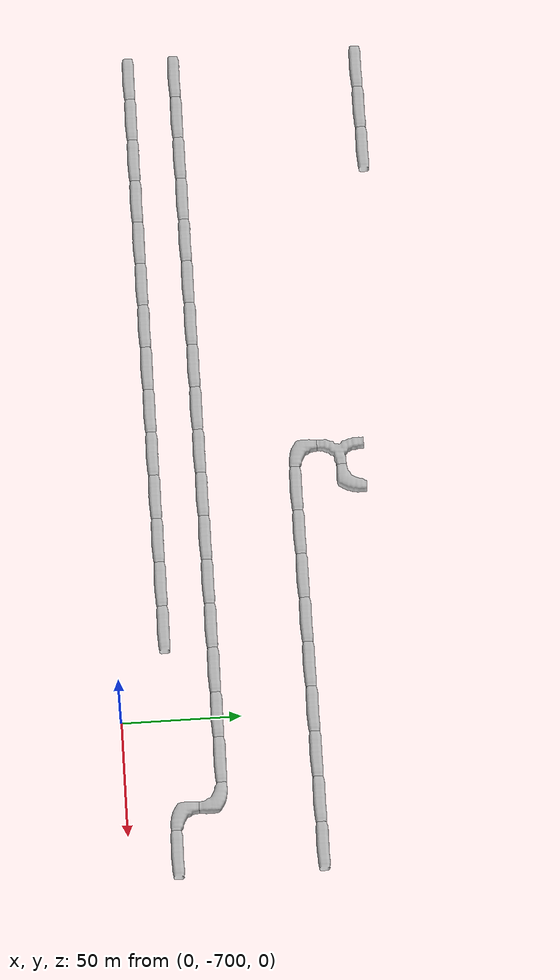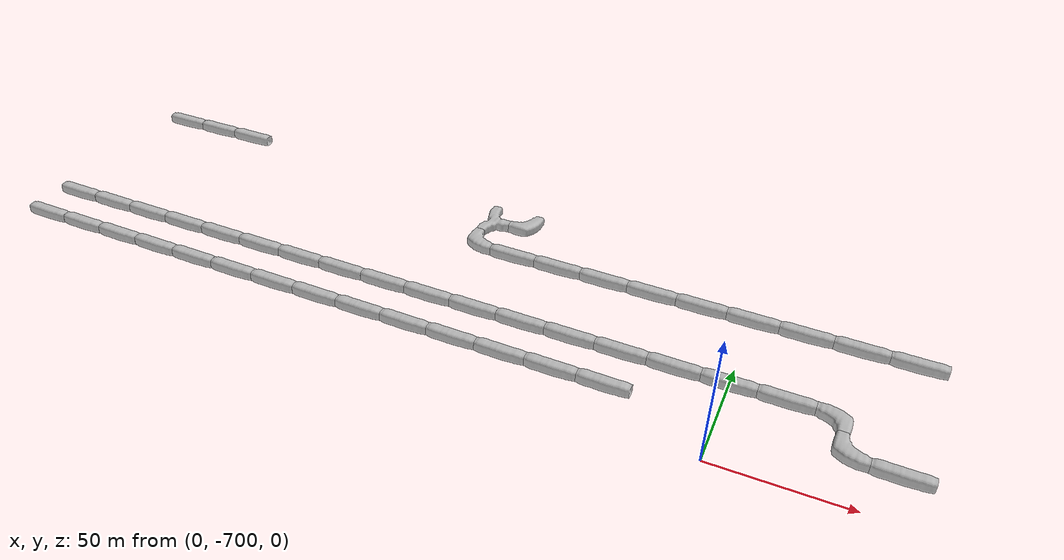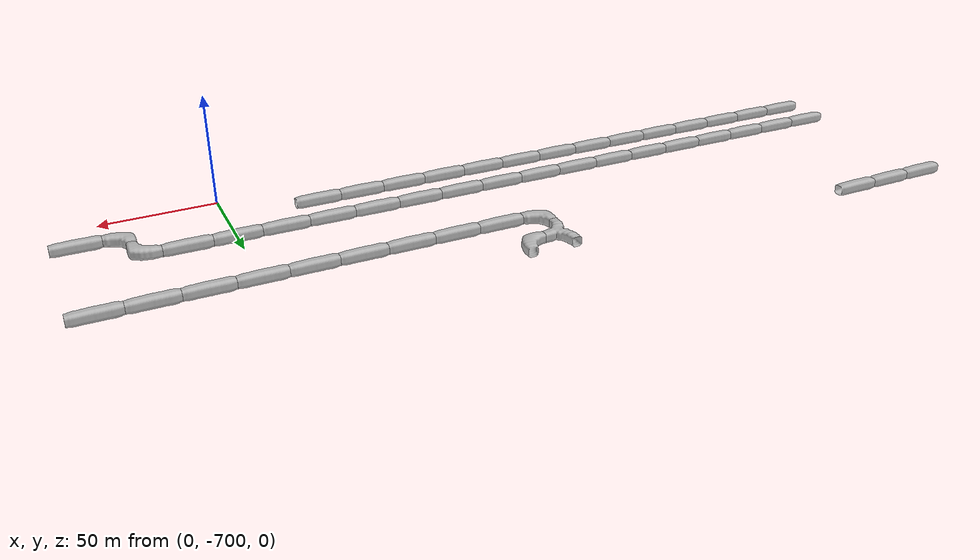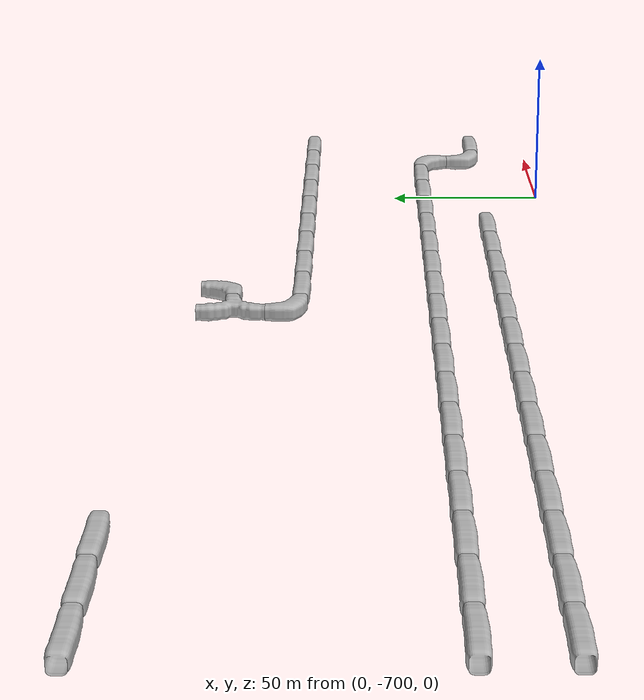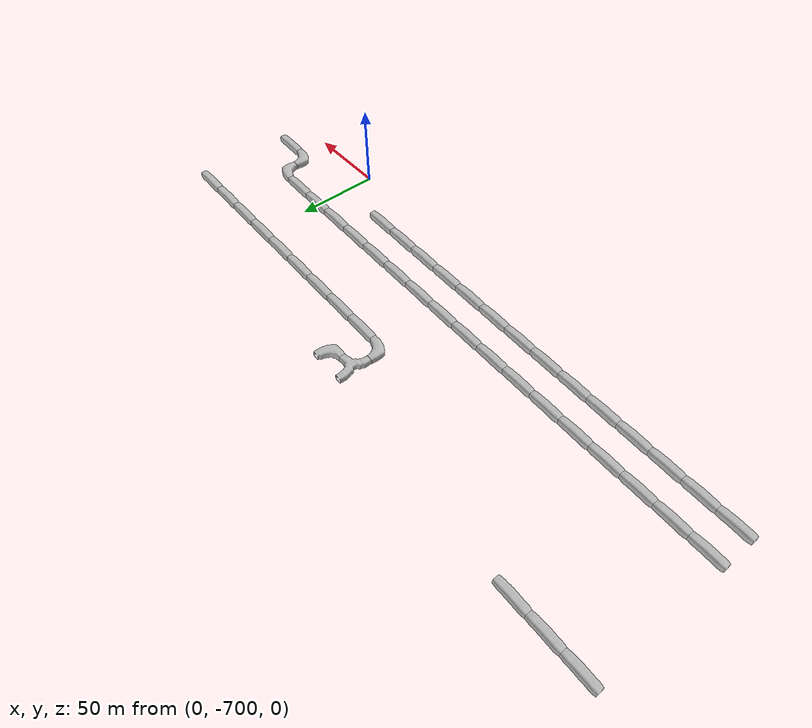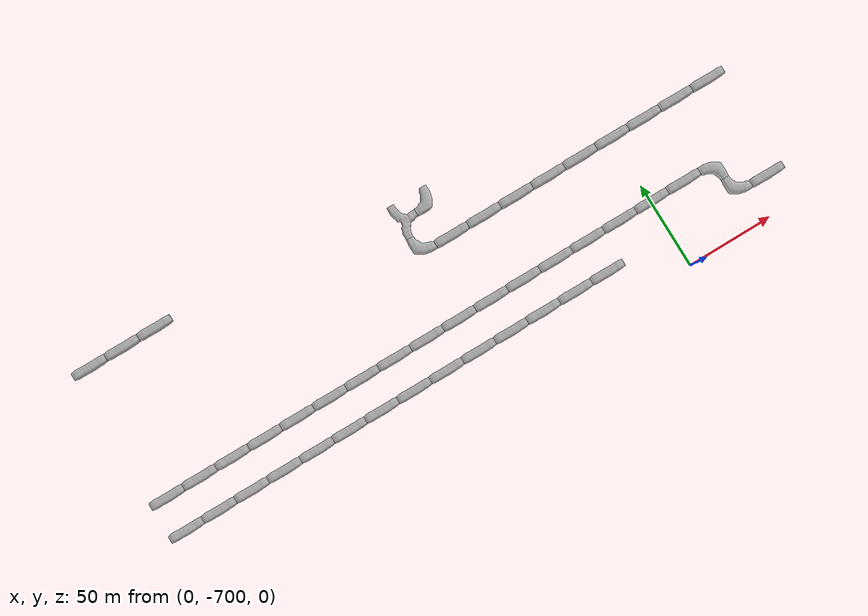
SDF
<sdf version="1.6">
 <world name="cave_16000_4">
  <include>
   <static>true</static>
   <name>cave_-5_-30</name>
   <pose>-100 -600 0 0 0 1.5707963267948966</pose>
   <uri>model://cave_L_20m</uri>
  </include>
  <include>
   <static>true</static>
   <name>cave_-6_-30</name>
   <pose>-120 -600 0 0 0 -1.5707963267948966</pose>
   <uri>model://cave_3way_20m</uri>
  </include>
  <include>
   <static>true</static>
   <name>cave_-6_-31</name>
   <pose>-120 -620 0 0 0 0.0</pose>
   <uri>model://cave_L_20m</uri>
  </include>
  <include>
   <static>true</static>
   <name>cave_-5_-31</name>
   <pose>-100 -620 0 0 0 1.5707963267948966</pose>
   <uri>model://cave_straight_20m</uri>
  </include>
  <include>
   <static>true</static>
   <name>cave_-4_-31</name>
   <pose>-80 -620 0 0 0 1.5707963267948966</pose>
   <uri>model://cave_straight_20m</uri>
  </include>
  <include>
   <static>true</static>
   <name>cave_-3_-31</name>
   <pose>-60 -620 0 0 0 1.5707963267948966</pose>
   <uri>model://cave_straight_20m</uri>
  </include>
  <include>
   <static>true</static>
   <name>cave_-2_-31</name>
   <pose>-40 -620 0 0 0 1.5707963267948966</pose>
   <uri>model://cave_straight_20m</uri>
  </include>
  <include>
   <static>true</static>
   <name>cave_-1_-31</name>
   <pose>-20 -620 0 0 0 1.5707963267948966</pose>
   <uri>model://cave_straight_20m</uri>
  </include>
  <include>
   <static>true</static>
   <name>cave_0_-31</name>
   <pose>0 -620 0 0 0 1.5707963267948966</pose>
   <uri>model://cave_straight_20m</uri>
  </include>
  <include>
   <static>true</static>
   <name>cave_1_-31</name>
   <pose>20 -620 0 0 0 1.5707963267948966</pose>
   <uri>model://cave_straight_20m</uri>
  </include>
  <include>
   <static>true</static>
   <name>cave_2_-31</name>
   <pose>40 -620 0 0 0 1.5707963267948966</pose>
   <uri>model://cave_straight_20m</uri>
  </include>
  <include>
   <static>true</static>
   <name>cave_3_-31</name>
   <pose>60 -620 0 0 0 1.5707963267948966</pose>
   <uri>model://cave_straight_20m</uri>
  </include>
  <include>
   <static>true</static>
   <name>cave_3_-34</name>
   <pose>60 -680 0 0 0 1.5707963267948966</pose>
   <uri>model://cave_straight_20m</uri>
  </include>
  <include>
   <static>true</static>
   <name>cave_2_-34</name>
   <pose>40 -680 0 0 0 0.0</pose>
   <uri>model://cave_L_20m</uri>
  </include>
  <include>
   <static>true</static>
   <name>cave_2_-33</name>
   <pose>40 -660 0 0 0 3.141592653589793</pose>
   <uri>model://cave_L_20m</uri>
  </include>
  <include>
   <static>true</static>
   <name>cave_1_-33</name>
   <pose>20 -660 0 0 0 1.5707963267948966</pose>
   <uri>model://cave_straight_20m</uri>
  </include>
  <include>
   <static>true</static>
   <name>cave_0_-33</name>
   <pose>0 -660 0 0 0 1.5707963267948966</pose>
   <uri>model://cave_straight_20m</uri>
  </include>
  <include>
   <static>true</static>
   <name>cave_-1_-33</name>
   <pose>-20 -660 0 0 0 1.5707963267948966</pose>
   <uri>model://cave_straight_20m</uri>
  </include>
  <include>
   <static>true</static>
   <name>cave_-2_-33</name>
   <pose>-40 -660 0 0 0 1.5707963267948966</pose>
   <uri>model://cave_straight_20m</uri>
  </include>
  <include>
   <static>true</static>
   <name>cave_-3_-33</name>
   <pose>-60 -660 0 0 0 1.5707963267948966</pose>
   <uri>model://cave_straight_20m</uri>
  </include>
  <include>
   <static>true</static>
   <name>cave_-4_-33</name>
   <pose>-80 -660 0 0 0 1.5707963267948966</pose>
   <uri>model://cave_straight_20m</uri>
  </include>
  <include>
   <static>true</static>
   <name>cave_-5_-33</name>
   <pose>-100 -660 0 0 0 1.5707963267948966</pose>
   <uri>model://cave_straight_20m</uri>
  </include>
  <include>
   <static>true</static>
   <name>cave_-6_-33</name>
   <pose>-120 -660 0 0 0 1.5707963267948966</pose>
   <uri>model://cave_straight_20m</uri>
  </include>
  <include>
   <static>true</static>
   <name>cave_-7_-33</name>
   <pose>-140 -660 0 0 0 1.5707963267948966</pose>
   <uri>model://cave_straight_20m</uri>
  </include>
  <include>
   <static>true</static>
   <name>cave_-8_-33</name>
   <pose>-160 -660 0 0 0 1.5707963267948966</pose>
   <uri>model://cave_straight_20m</uri>
  </include>
  <include>
   <static>true</static>
   <name>cave_-9_-33</name>
   <pose>-180 -660 0 0 0 1.5707963267948966</pose>
   <uri>model://cave_straight_20m</uri>
  </include>
  <include>
   <static>true</static>
   <name>cave_-10_-33</name>
   <pose>-200 -660 0 0 0 1.5707963267948966</pose>
   <uri>model://cave_straight_20m</uri>
  </include>
  <include>
   <static>true</static>
   <name>cave_-11_-33</name>
   <pose>-220 -660 0 0 0 1.5707963267948966</pose>
   <uri>model://cave_straight_20m</uri>
  </include>
  <include>
   <static>true</static>
   <name>cave_-12_-33</name>
   <pose>-240 -660 0 0 0 1.5707963267948966</pose>
   <uri>model://cave_straight_20m</uri>
  </include>
  <include>
   <static>true</static>
   <name>cave_-13_-33</name>
   <pose>-260 -660 0 0 0 1.5707963267948966</pose>
   <uri>model://cave_straight_20m</uri>
  </include>
  <include>
   <static>true</static>
   <name>cave_-14_-33</name>
   <pose>-280 -660 0 0 0 1.5707963267948966</pose>
   <uri>model://cave_straight_20m</uri>
  </include>
  <include>
   <static>true</static>
   <name>cave_-15_-33</name>
   <pose>-300 -660 0 0 0 1.5707963267948966</pose>
   <uri>model://cave_straight_20m</uri>
  </include>
  <include>
   <static>true</static>
   <name>cave_-15_-34</name>
   <pose>-300 -680 0 0 0 1.5707963267948966</pose>
   <uri>model://cave_straight_20m</uri>
  </include>
  <include>
   <static>true</static>
   <name>cave_-14_-34</name>
   <pose>-280 -680 0 0 0 1.5707963267948966</pose>
   <uri>model://cave_straight_20m</uri>
  </include>
  <include>
   <static>true</static>
   <name>cave_-13_-34</name>
   <pose>-260 -680 0 0 0 1.5707963267948966</pose>
   <uri>model://cave_straight_20m</uri>
  </include>
  <include>
   <static>true</static>
   <name>cave_-12_-34</name>
   <pose>-240 -680 0 0 0 1.5707963267948966</pose>
   <uri>model://cave_straight_20m</uri>
  </include>
  <include>
   <static>true</static>
   <name>cave_-11_-34</name>
   <pose>-220 -680 0 0 0 1.5707963267948966</pose>
   <uri>model://cave_straight_20m</uri>
  </include>
  <include>
   <static>true</static>
   <name>cave_-10_-34</name>
   <pose>-200 -680 0 0 0 1.5707963267948966</pose>
   <uri>model://cave_straight_20m</uri>
  </include>
  <include>
   <static>true</static>
   <name>cave_-9_-34</name>
   <pose>-180 -680 0 0 0 1.5707963267948966</pose>
   <uri>model://cave_straight_20m</uri>
  </include>
  <include>
   <static>true</static>
   <name>cave_-8_-34</name>
   <pose>-160 -680 0 0 0 1.5707963267948966</pose>
   <uri>model://cave_straight_20m</uri>
  </include>
  <include>
   <static>true</static>
   <name>cave_-7_-34</name>
   <pose>-140 -680 0 0 0 1.5707963267948966</pose>
   <uri>model://cave_straight_20m</uri>
  </include>
  <include>
   <static>true</static>
   <name>cave_-6_-34</name>
   <pose>-120 -680 0 0 0 1.5707963267948966</pose>
   <uri>model://cave_straight_20m</uri>
  </include>
  <include>
   <static>true</static>
   <name>cave_-5_-34</name>
   <pose>-100 -680 0 0 0 1.5707963267948966</pose>
   <uri>model://cave_straight_20m</uri>
  </include>
  <include>
   <static>true</static>
   <name>cave_-4_-34</name>
   <pose>-80 -680 0 0 0 1.5707963267948966</pose>
   <uri>model://cave_straight_20m</uri>
  </include>
  <include>
   <static>true</static>
   <name>cave_-3_-34</name>
   <pose>-60 -680 0 0 0 1.5707963267948966</pose>
   <uri>model://cave_straight_20m</uri>
  </include>
  <include>
   <static>true</static>
   <name>cave_-2_-34</name>
   <pose>-40 -680 0 0 0 1.5707963267948966</pose>
   <uri>model://cave_straight_20m</uri>
  </include>
  <include>
   <static>true</static>
   <name>cave_-13_-29</name>
   <pose>-260 -580 0 0 0 1.5707963267948966</pose>
   <uri>model://cave_straight_20m</uri>
  </include>
  <include>
   <static>true</static>
   <name>cave_-14_-29</name>
   <pose>-280 -580 0 0 0 1.5707963267948966</pose>
   <uri>model://cave_straight_20m</uri>
  </include>
  <include>
   <static>true</static>
   <name>cave_-15_-29</name>
   <pose>-300 -580 0 0 0 1.5707963267948966</pose>
   <uri>model://cave_straight_20m</uri>
  </include>
 </world>
</sdf>
